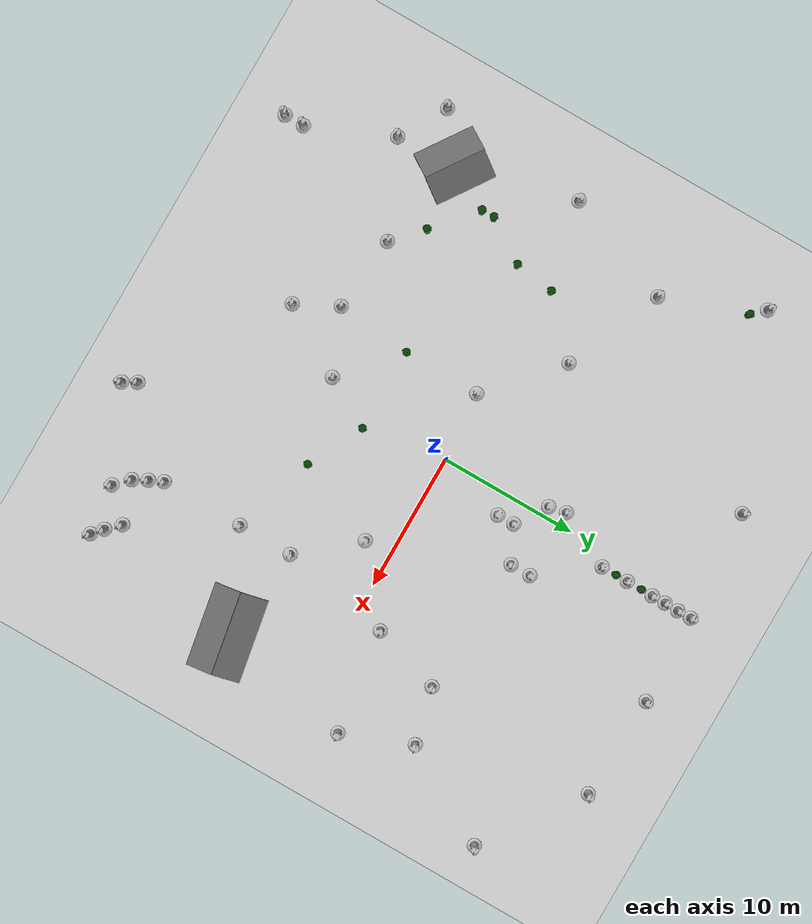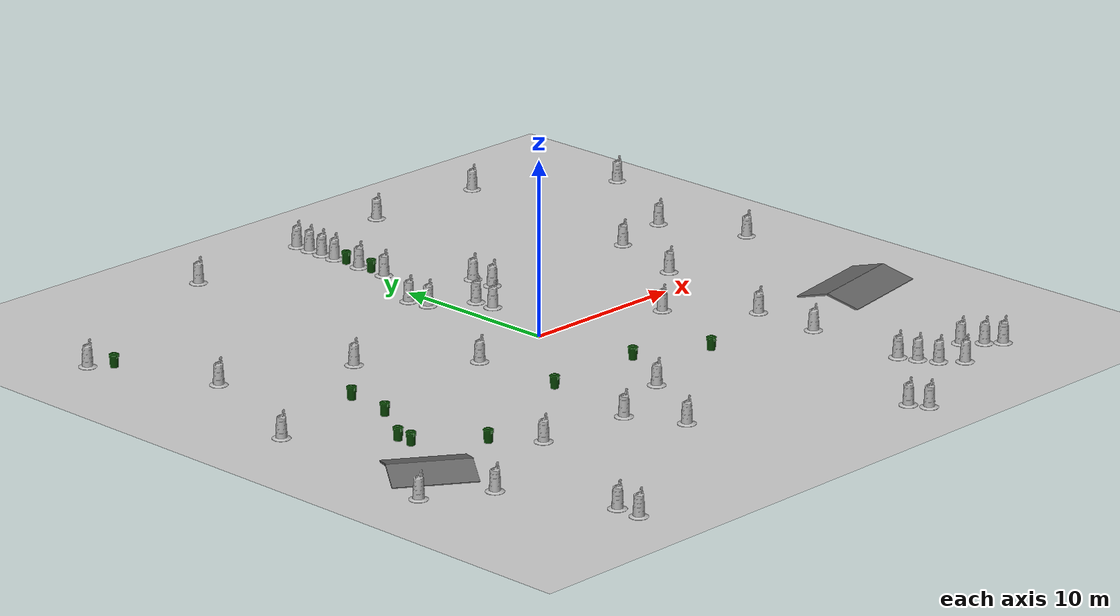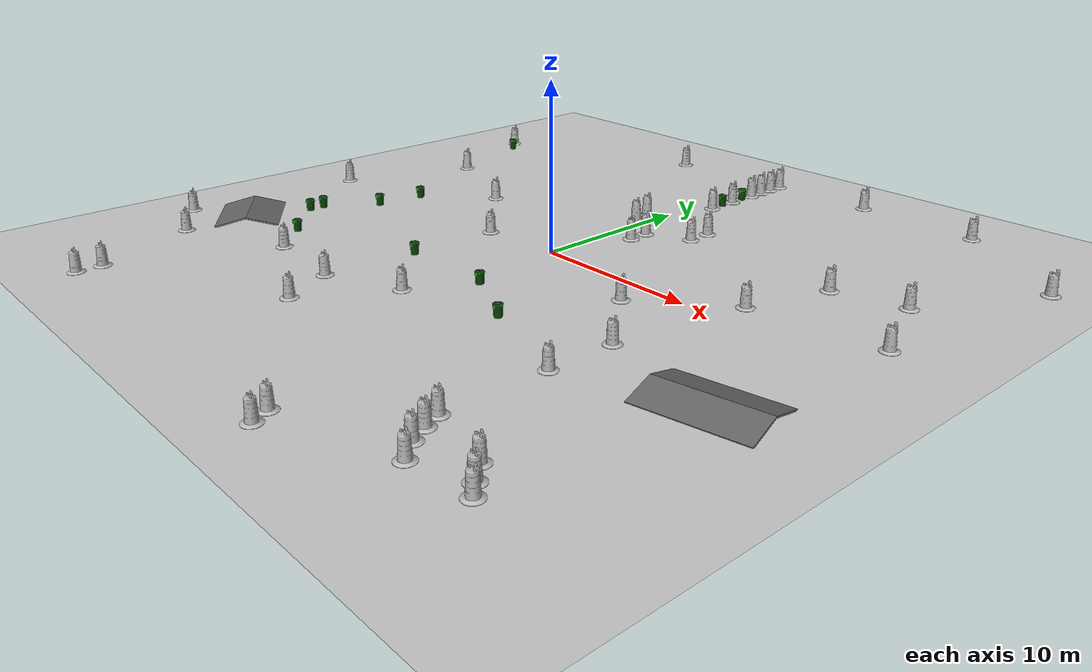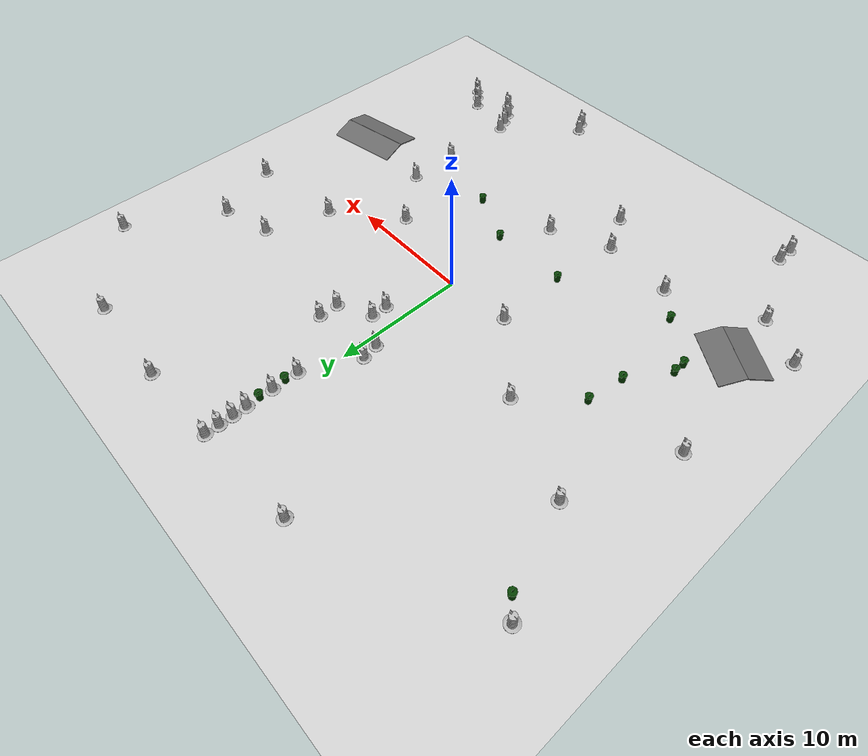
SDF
<sdf version="1.6">
 <world name="default">
  <model name="igvc_basic_ground">
   <static>1</static>
   <link name="link">
    <collision name="collision">
     <geometry><plane><normal>0 0 1</normal><size>50 50</size></plane></geometry>
     <surface><friction><ode><mu>100</mu><mu2>50</mu2></ode></friction></surface>
    </collision>
    <visual name="visual">
     <cast_shadows>0</cast_shadows>
     <geometry><plane><normal>0 0 1</normal><size>50 50</size></plane></geometry>
     <material>
      <script>
       <uri>model://igvc_basic_ground/materials/scripts</uri>
       <uri>model://igvc_basic_ground/materials/textures</uri>
       <name>igvc_basic_ground/Image</name>
      </script>
     </material>
    </visual>
    <velocity_decay><linear>0</linear><angular>0</angular></velocity_decay>
   </link>
  </model>
  <model name="ground_plane">
   <static>1</static>
   <link name="link">
    <visual name="visual">
     <geometry><plane><normal>0 0 1</normal><size>200 200</size></plane></geometry>
     <material>
      <script>
       <uri>model://igvc_basic_ground/materials/scripts</uri>
       <uri>model://igvc_basic_ground/materials/textures</uri>
       <name>igvc_basic_ground/grass</name>
      </script>
     </material>
    </visual>
   </link>
   <pose>0 0 -0.2 0 0 0</pose>
  </model>
  <light name="sun" type="directional">
   <pose>0 0 10 0 -0 0</pose>
   <diffuse>0.8 0.8 0.8 1</diffuse>
   <specular>0.2 0.2 0.2 1</specular>
   <attenuation>
    <range>1000</range>
    <constant>0.9</constant>
    <linear>0.01</linear>
    <quadratic>0.001</quadratic>
   </attenuation>
   <direction>-0.5 0.1 -0.9</direction>
  </light>
  <physics name="default_physics" default="0" type="ode">
   <max_step_size>0.001</max_step_size>
   <real_time_factor>1</real_time_factor>
   <real_time_update_rate>1000</real_time_update_rate>
  </physics>
  <scene><ambient>0.4 0.4 0.4 1</ambient><background>0.7 0.7 0.7 1</background><shadows>1</shadows></scene>
  <spherical_coordinates>
   <surface_model>EARTH_WGS84</surface_model>
   <latitude_deg>0</latitude_deg>
   <longitude_deg>0</longitude_deg>
   <elevation>0</elevation>
   <heading_deg>0</heading_deg>
  </spherical_coordinates>
  <model name="ramp1_up">
   <static>1</static>
   <pose>-18.4 -10.4 0.2 0.2612 -0 -0.6</pose>
   <link name="link">
    <collision name="collision"><geometry><box><size>4.5 2 0.1</size></box></geometry></collision>
    <visual name="visual">
     <geometry><box><size>4.5 2 0.1</size></box></geometry>
     <material>
      <ambient>0.8 1 0.8 1</ambient>
      <specular>0.2 0.2 0.2 64</specular>
      <diffuse>0.4 0.4 0.4 1</diffuse>
     </material>
    </visual>
   </link>
  </model>
  <model name="ramp1_down">
   <static>1</static>
   <pose>-17.3 -8.8414 0.2 0.2612 -0 2.5416</pose>
   <link name="link">
    <collision name="collision"><geometry><box><size>4.5 2 0.1</size></box></geometry></collision>
    <visual name="visual">
     <geometry><box><size>4.5 2 0.1</size></box></geometry>
     <material>
      <ambient>0.8 1 0.8 1</ambient>
      <specular>0.2 0.2 0.2 64</specular>
      <diffuse>0.4 0.4 0.4 1</diffuse>
     </material>
    </visual>
   </link>
  </model>
  <model name="ramp2_up">
   <static>1</static>
   <pose>17.6547 -6.1 0.2 0.2612 -0 -2.962</pose>
   <link name="link">
    <collision name="collision"><geometry><box><size>6 2 0.1</size></box></geometry></collision>
    <visual name="visual">
     <geometry><box><size>6 2 0.1</size></box></geometry>
     <material>
      <ambient>0.8 1 0.8 1</ambient>
      <specular>0.2 0.2 0.2 64</specular>
      <diffuse>0.4 0.4 0.4 1</diffuse>
     </material>
    </visual>
   </link>
  </model>
  <model name="ramp2_down">
   <static>1</static>
   <pose>18 -8 0.2 0.2612 -0 0.18</pose>
   <link name="link">
    <collision name="collision"><geometry><box><size>6 2 0.1</size></box></geometry></collision>
    <visual name="visual">
     <geometry><box><size>6 2 0.1</size></box></geometry>
     <material>
      <ambient>0.8 1 0.8 1</ambient>
      <specular>0.2 0.2 0.2 64</specular>
      <diffuse>0.4 0.4 0.4 1</diffuse>
     </material>
    </visual>
   </link>
  </model>
  <model name="Construction Barrel">
   <link name="link">
    <inertial>
     <pose>0 0 0.4 0 -0 0</pose>
     <mass>500</mass>
     <inertia><ixx>51.2096</ixx><iyy>51.2096</iyy><izz>25</izz><ixy>0</ixy><ixz>0</ixz><iyz>0</iyz></inertia>
    </inertial>
    <collision name="collision">
     <geometry><mesh><uri>model://construction_barrel/meshes/construction_barrel.dae</uri></mesh></geometry>
    </collision>
    <visual name="visual">
     <geometry><mesh><uri>model://construction_barrel/meshes/construction_barrel.dae</uri></mesh></geometry>
    </visual>
    <velocity_decay><linear>0</linear><angular>0</angular></velocity_decay>
   </link>
   <pose>-15.0002 -21.4499 -4e-06 -5e-06 -7e-06 -0.002918</pose>
   <static>0</static>
  </model>
  <model name="Construction Barrel_0">
   <link name="link">
    <inertial>
     <pose>0 0 0.4 0 -0 0</pose>
     <mass>500</mass>
     <inertia><ixx>51.2096</ixx><iyy>51.2096</iyy><izz>25</izz><ixy>0</ixy><ixz>0</ixz><iyz>0</iyz></inertia>
    </inertial>
    <collision name="collision">
     <geometry><mesh><uri>model://construction_barrel/meshes/construction_barrel.dae</uri></mesh></geometry>
    </collision>
    <visual name="visual">
     <geometry><mesh><uri>model://construction_barrel/meshes/construction_barrel.dae</uri></mesh></geometry>
    </visual>
    <velocity_decay><linear>0</linear><angular>0</angular></velocity_decay>
   </link>
   <pose>-15.0002 -19.9984 -4e-06 -5e-06 -7e-06 -0.002982</pose>
   <static>0</static>
  </model>
  <model name="Construction Barrel_1">
   <link name="link">
    <inertial>
     <pose>0 0 0.4 0 -0 0</pose>
     <mass>500</mass>
     <inertia><ixx>51.2096</ixx><iyy>51.2096</iyy><izz>25</izz><ixy>0</ixy><ixz>0</ixz><iyz>0</iyz></inertia>
    </inertial>
    <collision name="collision">
     <geometry><mesh><uri>model://construction_barrel/meshes/construction_barrel.dae</uri></mesh></geometry>
    </collision>
    <visual name="visual">
     <geometry><mesh><uri>model://construction_barrel/meshes/construction_barrel.dae</uri></mesh></geometry>
    </visual>
    <velocity_decay><linear>0</linear><angular>0</angular></velocity_decay>
   </link>
   <pose>-17.5785 -13.9984 -4e-06 -5e-06 -7e-06 -0.002983</pose>
   <static>0</static>
  </model>
  <model name="Construction Barrel_2">
   <link name="link">
    <inertial>
     <pose>0 0 0.4 0 -0 0</pose>
     <mass>500</mass>
     <inertia><ixx>51.2096</ixx><iyy>51.2096</iyy><izz>25</izz><ixy>0</ixy><ixz>0</ixz><iyz>0</iyz></inertia>
    </inertial>
    <collision name="collision">
     <geometry><mesh><uri>model://construction_barrel/meshes/construction_barrel.dae</uri></mesh></geometry>
    </collision>
    <visual name="visual">
     <geometry><mesh><uri>model://construction_barrel/meshes/construction_barrel.dae</uri></mesh></geometry>
    </visual>
    <velocity_decay><linear>0</linear><angular>0</angular></velocity_decay>
   </link>
   <pose>-20.9855 -12.0069 -4e-06 -5e-06 -7e-06 -0.002768</pose>
   <static>0</static>
  </model>
  <model name="first_2015_trash_can_1">
   <link name="link">
    <inertial>
     <pose>0 0 0.3683 0 -0 0</pose>
     <mass>4.83076</mass>
     <inertia>
      <ixx>0.281534</ixx>
      <ixy>0</ixy>
      <ixz>0</ixz>
      <iyy>0.281534</iyy>
      <iyz>0</iyz>
      <izz>0.126223</izz>
     </inertia>
    </inertial>
    <visual name="visual">
     <geometry><mesh><uri>model://first_2015_trash_can/meshes/trash_can.dae</uri></mesh></geometry>
    </visual>
    <collision name="collision">
     <geometry><mesh><uri>model://first_2015_trash_can/meshes/trash_can.dae</uri></mesh></geometry>
    </collision>
    <velocity_decay><linear>0</linear><angular>0</angular></velocity_decay>
   </link>
   <pose>-15.9987 -6.40843 -4e-06 3e-06 -2e-06 -0.006209</pose>
   <static>0</static>
  </model>
  <model name="first_2015_trash_can_2">
   <link name="link">
    <inertial>
     <pose>0 0 0.3683 0 -0 0</pose>
     <mass>4.83076</mass>
     <inertia>
      <ixx>0.281534</ixx>
      <ixy>0</ixy>
      <ixz>0</ixz>
      <iyy>0.281534</iyy>
      <iyz>0</iyz>
      <izz>0.126223</izz>
     </inertia>
    </inertial>
    <visual name="visual">
     <geometry><mesh><uri>model://first_2015_trash_can/meshes/trash_can.dae</uri></mesh></geometry>
    </visual>
    <collision name="collision">
     <geometry><mesh><uri>model://first_2015_trash_can/meshes/trash_can.dae</uri></mesh></geometry>
    </collision>
    <velocity_decay><linear>0</linear><angular>0</angular></velocity_decay>
   </link>
   <pose>-15.9988 -5.46446 -1e-06 1.9e-05 4e-06 -0.005434</pose>
   <static>0</static>
  </model>
  <model name="Construction Barrel_4">
   <link name="link">
    <inertial>
     <pose>0 0 0.4 0 -0 0</pose>
     <mass>500</mass>
     <inertia><ixx>51.2096</ixx><iyy>51.2096</iyy><izz>25</izz><ixy>0</ixy><ixz>0</ixz><iyz>0</iyz></inertia>
    </inertial>
    <collision name="collision">
     <geometry><mesh><uri>model://construction_barrel/meshes/construction_barrel.dae</uri></mesh></geometry>
    </collision>
    <visual name="visual">
     <geometry><mesh><uri>model://construction_barrel/meshes/construction_barrel.dae</uri></mesh></geometry>
    </visual>
    <velocity_decay><linear>0</linear><angular>0</angular></velocity_decay>
   </link>
   <pose>-20.0002 -0.998557 0 1e-06 1e-06 -0.0028</pose>
   <static>0</static>
  </model>
  <model name="Construction Barrel_5">
   <link name="link">
    <inertial>
     <pose>0 0 0.4 0 -0 0</pose>
     <mass>500</mass>
     <inertia><ixx>51.2096</ixx><iyy>51.2096</iyy><izz>25</izz><ixy>0</ixy><ixz>0</ixz><iyz>0</iyz></inertia>
    </inertial>
    <collision name="collision">
     <geometry><mesh><uri>model://construction_barrel/meshes/construction_barrel.dae</uri></mesh></geometry>
    </collision>
    <visual name="visual">
     <geometry><mesh><uri>model://construction_barrel/meshes/construction_barrel.dae</uri></mesh></geometry>
    </visual>
    <velocity_decay><linear>0</linear><angular>0</angular></velocity_decay>
   </link>
   <pose>-17.0002 7.0014 -4e-06 -5e-06 -7e-06 -0.002735</pose>
   <static>0</static>
  </model>
  <model name="Construction Barrel_6">
   <link name="link">
    <inertial>
     <pose>0 0 0.4 0 -0 0</pose>
     <mass>500</mass>
     <inertia><ixx>51.2096</ixx><iyy>51.2096</iyy><izz>25</izz><ixy>0</ixy><ixz>0</ixz><iyz>0</iyz></inertia>
    </inertial>
    <collision name="collision">
     <geometry><mesh><uri>model://construction_barrel/meshes/construction_barrel.dae</uri></mesh></geometry>
    </collision>
    <visual name="visual">
     <geometry><mesh><uri>model://construction_barrel/meshes/construction_barrel.dae</uri></mesh></geometry>
    </visual>
    <velocity_decay><linear>0</linear><angular>0</angular></velocity_decay>
   </link>
   <pose>-20.0002 14.0015 -4e-06 -5e-06 -7e-06 -0.002679</pose>
   <static>0</static>
  </model>
  <model name="first_2015_trash_can_3">
   <link name="link">
    <inertial>
     <pose>0 0 0.3683 0 -0 0</pose>
     <mass>4.83076</mass>
     <inertia>
      <ixx>0.281534</ixx>
      <ixy>0</ixy>
      <ixz>0</ixz>
      <iyy>0.281534</iyy>
      <iyz>0</iyz>
      <izz>0.126223</izz>
     </inertia>
    </inertial>
    <visual name="visual">
     <geometry><mesh><uri>model://first_2015_trash_can/meshes/trash_can.dae</uri></mesh></geometry>
    </visual>
    <collision name="collision">
     <geometry><mesh><uri>model://first_2015_trash_can/meshes/trash_can.dae</uri></mesh></geometry>
    </collision>
    <velocity_decay><linear>0</linear><angular>0</angular></velocity_decay>
   </link>
   <pose>-18.999 12.9997 -2e-06 4e-06 1.3e-05 -0.005982</pose>
   <static>0</static>
  </model>
  <model name="Construction Barrel_7">
   <link name="link">
    <inertial>
     <pose>0 0 0.4 0 -0 0</pose>
     <mass>500</mass>
     <inertia><ixx>51.2096</ixx><iyy>51.2096</iyy><izz>25</izz><ixy>0</ixy><ixz>0</ixz><iyz>0</iyz></inertia>
    </inertial>
    <collision name="collision">
     <geometry><mesh><uri>model://construction_barrel/meshes/construction_barrel.dae</uri></mesh></geometry>
    </collision>
    <visual name="visual">
     <geometry><mesh><uri>model://construction_barrel/meshes/construction_barrel.dae</uri></mesh></geometry>
    </visual>
    <velocity_decay><linear>0</linear><angular>0</angular></velocity_decay>
   </link>
   <pose>-7.00003 19.5 0 1e-06 1e-06 -0.002542</pose>
   <static>0</static>
  </model>
  <model name="Construction Barrel_8">
   <link name="link">
    <inertial>
     <pose>0 0 0.4 0 -0 0</pose>
     <mass>500</mass>
     <inertia><ixx>51.2096</ixx><iyy>51.2096</iyy><izz>25</izz><ixy>0</ixy><ixz>0</ixz><iyz>0</iyz></inertia>
    </inertial>
    <collision name="collision">
     <geometry><mesh><uri>model://construction_barrel/meshes/construction_barrel.dae</uri></mesh></geometry>
    </collision>
    <visual name="visual">
     <geometry><mesh><uri>model://construction_barrel/meshes/construction_barrel.dae</uri></mesh></geometry>
    </visual>
    <velocity_decay><linear>0</linear><angular>0</angular></velocity_decay>
   </link>
   <pose>1.0061 20.0321 -2e-06 -5e-06 -4e-06 0.001778</pose>
   <static>0</static>
  </model>
  <model name="Construction Barrel_9">
   <link name="link">
    <inertial>
     <pose>0 0 0.4 0 -0 0</pose>
     <mass>500</mass>
     <inertia><ixx>51.2096</ixx><iyy>51.2096</iyy><izz>25</izz><ixy>0</ixy><ixz>0</ixz><iyz>0</iyz></inertia>
    </inertial>
    <collision name="collision">
     <geometry><mesh><uri>model://construction_barrel/meshes/construction_barrel.dae</uri></mesh></geometry>
    </collision>
    <visual name="visual">
     <geometry><mesh><uri>model://construction_barrel/meshes/construction_barrel.dae</uri></mesh></geometry>
    </visual>
    <velocity_decay><linear>0</linear><angular>0</angular></velocity_decay>
   </link>
   <pose>1.00725 19.0136 -3e-06 -5e-06 -4e-06 -0.041479</pose>
   <static>0</static>
  </model>
  <model name="Construction Barrel_10">
   <link name="link">
    <inertial>
     <pose>0 0 0.4 0 -0 0</pose>
     <mass>500</mass>
     <inertia><ixx>51.2096</ixx><iyy>51.2096</iyy><izz>25</izz><ixy>0</ixy><ixz>0</ixz><iyz>0</iyz></inertia>
    </inertial>
    <collision name="collision">
     <geometry><mesh><uri>model://construction_barrel/meshes/construction_barrel.dae</uri></mesh></geometry>
    </collision>
    <visual name="visual">
     <geometry><mesh><uri>model://construction_barrel/meshes/construction_barrel.dae</uri></mesh></geometry>
    </visual>
    <velocity_decay><linear>0</linear><angular>0</angular></velocity_decay>
   </link>
   <pose>0.994832 17.9958 -0 1e-06 -1e-06 0.05713</pose>
   <static>0</static>
  </model>
  <model name="Construction Barrel_11">
   <link name="link">
    <inertial>
     <pose>0 0 0.4 0 -0 0</pose>
     <mass>500</mass>
     <inertia><ixx>51.2096</ixx><iyy>51.2096</iyy><izz>25</izz><ixy>0</ixy><ixz>0</ixz><iyz>0</iyz></inertia>
    </inertial>
    <collision name="collision">
     <geometry><mesh><uri>model://construction_barrel/meshes/construction_barrel.dae</uri></mesh></geometry>
    </collision>
    <visual name="visual">
     <geometry><mesh><uri>model://construction_barrel/meshes/construction_barrel.dae</uri></mesh></geometry>
    </visual>
    <velocity_decay><linear>0</linear><angular>0</angular></velocity_decay>
   </link>
   <pose>1.00137 16.98 -1e-06 0 5e-06 0.03848</pose>
   <static>0</static>
  </model>
  <model name="first_2015_trash_can_4">
   <link name="link">
    <inertial>
     <pose>0 0 0.3683 0 -0 0</pose>
     <mass>4.83076</mass>
     <inertia>
      <ixx>0.281534</ixx>
      <ixy>0</ixy>
      <ixz>0</ixz>
      <iyy>0.281534</iyy>
      <iyz>0</iyz>
      <izz>0.126223</izz>
     </inertia>
    </inertial>
    <visual name="visual">
     <geometry><mesh><uri>model://first_2015_trash_can/meshes/trash_can.dae</uri></mesh></geometry>
    </visual>
    <collision name="collision">
     <geometry><mesh><uri>model://first_2015_trash_can/meshes/trash_can.dae</uri></mesh></geometry>
    </collision>
    <velocity_decay><linear>0</linear><angular>0</angular></velocity_decay>
   </link>
   <pose>1.00108 15.9997 -1e-06 -2e-05 -2e-06 -0.005542</pose>
   <static>0</static>
  </model>
  <model name="Construction Barrel_12">
   <link name="link">
    <inertial>
     <pose>0 0 0.4 0 -0 0</pose>
     <mass>500</mass>
     <inertia><ixx>51.2096</ixx><iyy>51.2096</iyy><izz>25</izz><ixy>0</ixy><ixz>0</ixz><iyz>0</iyz></inertia>
    </inertial>
    <collision name="collision">
     <geometry><mesh><uri>model://construction_barrel/meshes/construction_barrel.dae</uri></mesh></geometry>
    </collision>
    <visual name="visual">
     <geometry><mesh><uri>model://construction_barrel/meshes/construction_barrel.dae</uri></mesh></geometry>
    </visual>
    <velocity_decay><linear>0</linear><angular>0</angular></velocity_decay>
   </link>
   <pose>0.999793 15.0012 -4e-06 -5e-06 -7e-06 -0.002189</pose>
   <static>0</static>
  </model>
  <model name="Construction Barrel_13">
   <link name="link">
    <inertial>
     <pose>0 0 0.4 0 -0 0</pose>
     <mass>500</mass>
     <inertia><ixx>51.2096</ixx><iyy>51.2096</iyy><izz>25</izz><ixy>0</ixy><ixz>0</ixz><iyz>0</iyz></inertia>
    </inertial>
    <collision name="collision">
     <geometry><mesh><uri>model://construction_barrel/meshes/construction_barrel.dae</uri></mesh></geometry>
    </collision>
    <visual name="visual">
     <geometry><mesh><uri>model://construction_barrel/meshes/construction_barrel.dae</uri></mesh></geometry>
    </visual>
    <velocity_decay><linear>0</linear><angular>0</angular></velocity_decay>
   </link>
   <pose>0.999797 13.0011 -4e-06 -5e-06 -7e-06 -0.002115</pose>
   <static>0</static>
  </model>
  <model name="first_2015_trash_can_5">
   <link name="link">
    <inertial>
     <pose>0 0 0.3683 0 -0 0</pose>
     <mass>4.83076</mass>
     <inertia>
      <ixx>0.281534</ixx>
      <ixy>0</ixy>
      <ixz>0</ixz>
      <iyy>0.281534</iyy>
      <iyz>0</iyz>
      <izz>0.126223</izz>
     </inertia>
    </inertial>
    <visual name="visual">
     <geometry><mesh><uri>model://first_2015_trash_can/meshes/trash_can.dae</uri></mesh></geometry>
    </visual>
    <collision name="collision">
     <geometry><mesh><uri>model://first_2015_trash_can/meshes/trash_can.dae</uri></mesh></geometry>
    </collision>
    <velocity_decay><linear>0</linear><angular>0</angular></velocity_decay>
   </link>
   <pose>1.00104 13.9999 -1e-06 1.7e-05 2e-06 -0.004507</pose>
   <static>0</static>
  </model>
  <model name="Construction Barrel_14">
   <link name="link">
    <inertial>
     <pose>0 0 0.4 0 -0 0</pose>
     <mass>500</mass>
     <inertia><ixx>51.2096</ixx><iyy>51.2096</iyy><izz>25</izz><ixy>0</ixy><ixz>0</ixz><iyz>0</iyz></inertia>
    </inertial>
    <collision name="collision">
     <geometry><mesh><uri>model://construction_barrel/meshes/construction_barrel.dae</uri></mesh></geometry>
    </collision>
    <visual name="visual">
     <geometry><mesh><uri>model://construction_barrel/meshes/construction_barrel.dae</uri></mesh></geometry>
    </visual>
    <velocity_decay><linear>0</linear><angular>0</angular></velocity_decay>
   </link>
   <pose>1.48637 6.26313 -0 -1e-06 -0 -0.047595</pose>
   <static>0</static>
  </model>
  <model name="Construction Barrel_15">
   <link name="link">
    <inertial>
     <pose>0 0 0.4 0 -0 0</pose>
     <mass>500</mass>
     <inertia><ixx>51.2096</ixx><iyy>51.2096</iyy><izz>25</izz><ixy>0</ixy><ixz>0</ixz><iyz>0</iyz></inertia>
    </inertial>
    <collision name="collision">
     <geometry><mesh><uri>model://construction_barrel/meshes/construction_barrel.dae</uri></mesh></geometry>
    </collision>
    <visual name="visual">
     <geometry><mesh><uri>model://construction_barrel/meshes/construction_barrel.dae</uri></mesh></geometry>
    </visual>
    <velocity_decay><linear>0</linear><angular>0</angular></velocity_decay>
   </link>
   <pose>-1.00011 8.99997 1e-06 3e-06 2e-06 -3e-05</pose>
   <static>0</static>
  </model>
  <model name="Construction Barrel_16">
   <link name="link">
    <inertial>
     <pose>0 0 0.4 0 -0 0</pose>
     <mass>500</mass>
     <inertia><ixx>51.2096</ixx><iyy>51.2096</iyy><izz>25</izz><ixy>0</ixy><ixz>0</ixz><iyz>0</iyz></inertia>
    </inertial>
    <collision name="collision">
     <geometry><mesh><uri>model://construction_barrel/meshes/construction_barrel.dae</uri></mesh></geometry>
    </collision>
    <visual name="visual">
     <geometry><mesh><uri>model://construction_barrel/meshes/construction_barrel.dae</uri></mesh></geometry>
    </visual>
    <velocity_decay><linear>0</linear><angular>0</angular></velocity_decay>
   </link>
   <pose>-10.0001 4.00091 -4e-06 -5e-06 -7e-06 -0.001843</pose>
   <static>0</static>
  </model>
  <model name="Construction Barrel_17">
   <link name="link">
    <inertial>
     <pose>0 0 0.4 0 -0 0</pose>
     <mass>500</mass>
     <inertia><ixx>51.2096</ixx><iyy>51.2096</iyy><izz>25</izz><ixy>0</ixy><ixz>0</ixz><iyz>0</iyz></inertia>
    </inertial>
    <collision name="collision">
     <geometry><mesh><uri>model://construction_barrel/meshes/construction_barrel.dae</uri></mesh></geometry>
    </collision>
    <visual name="visual">
     <geometry><mesh><uri>model://construction_barrel/meshes/construction_barrel.dae</uri></mesh></geometry>
    </visual>
    <velocity_decay><linear>0</linear><angular>0</angular></velocity_decay>
   </link>
   <pose>4.00044 9.00687 -0 1e-06 -1e-06 -0.000916</pose>
   <static>0</static>
  </model>
  <model name="Construction Barrel_18">
   <link name="link">
    <inertial>
     <pose>0 0 0.4 0 -0 0</pose>
     <mass>500</mass>
     <inertia><ixx>51.2096</ixx><iyy>51.2096</iyy><izz>25</izz><ixy>0</ixy><ixz>0</ixz><iyz>0</iyz></inertia>
    </inertial>
    <collision name="collision">
     <geometry><mesh><uri>model://construction_barrel/meshes/construction_barrel.dae</uri></mesh></geometry>
    </collision>
    <visual name="visual">
     <geometry><mesh><uri>model://construction_barrel/meshes/construction_barrel.dae</uri></mesh></geometry>
    </visual>
    <velocity_decay><linear>0</linear><angular>0</angular></velocity_decay>
   </link>
   <pose>-11.0001 -10.9991 -4e-06 -5e-06 -7e-06 -0.001749</pose>
   <static>0</static>
  </model>
  <model name="first_2015_trash_can_6">
   <link name="link">
    <inertial>
     <pose>0 0 0.3683 0 -0 0</pose>
     <mass>4.83076</mass>
     <inertia>
      <ixx>0.281534</ixx>
      <ixy>0</ixy>
      <ixz>0</ixz>
      <iyy>0.281534</iyy>
      <iyz>0</iyz>
      <izz>0.126223</izz>
     </inertia>
    </inertial>
    <visual name="visual">
     <geometry><mesh><uri>model://first_2015_trash_can/meshes/trash_can.dae</uri></mesh></geometry>
    </visual>
    <collision name="collision">
     <geometry><mesh><uri>model://first_2015_trash_can/meshes/trash_can.dae</uri></mesh></geometry>
    </collision>
    <velocity_decay><linear>0</linear><angular>0</angular></velocity_decay>
   </link>
   <pose>-12.999 -9.00022 -4e-06 -1e-06 1.9e-05 -0.005092</pose>
   <static>0</static>
  </model>
  <model name="first_2015_trash_can_7">
   <link name="link">
    <inertial>
     <pose>0 0 0.3683 0 -0 0</pose>
     <mass>4.83076</mass>
     <inertia>
      <ixx>0.281534</ixx>
      <ixy>0</ixy>
      <ixz>0</ixz>
      <iyy>0.281534</iyy>
      <iyz>0</iyz>
      <izz>0.126223</izz>
     </inertia>
    </inertial>
    <visual name="visual">
     <geometry><mesh><uri>model://first_2015_trash_can/meshes/trash_can.dae</uri></mesh></geometry>
    </visual>
    <collision name="collision">
     <geometry><mesh><uri>model://first_2015_trash_can/meshes/trash_can.dae</uri></mesh></geometry>
    </collision>
    <velocity_decay><linear>0</linear><angular>0</angular></velocity_decay>
   </link>
   <pose>-13.999 -2.44883 -5e-06 5e-06 2e-05 -0.005077</pose>
   <static>0</static>
  </model>
  <model name="first_2015_trash_can_8">
   <link name="link">
    <inertial>
     <pose>0 0 0.3683 0 -0 0</pose>
     <mass>4.83076</mass>
     <inertia>
      <ixx>0.281534</ixx>
      <ixy>0</ixy>
      <ixz>0</ixz>
      <iyy>0.281534</iyy>
      <iyz>0</iyz>
      <izz>0.126223</izz>
     </inertia>
    </inertial>
    <visual name="visual">
     <geometry><mesh><uri>model://first_2015_trash_can/meshes/trash_can.dae</uri></mesh></geometry>
    </visual>
    <collision name="collision">
     <geometry><mesh><uri>model://first_2015_trash_can/meshes/trash_can.dae</uri></mesh></geometry>
    </collision>
    <velocity_decay><linear>0</linear><angular>0</angular></velocity_decay>
   </link>
   <pose>-13.5824 0.46204 -2e-06 1e-06 1e-05 -0.004711</pose>
   <static>0</static>
  </model>
  <model name="first_2015_trash_can_9">
   <link name="link">
    <inertial>
     <pose>0 0 0.3683 0 -0 0</pose>
     <mass>4.83076</mass>
     <inertia>
      <ixx>0.281534</ixx>
      <ixy>0</ixy>
      <ixz>0</ixz>
      <iyy>0.281534</iyy>
      <iyz>0</iyz>
      <izz>0.126223</izz>
     </inertia>
    </inertial>
    <visual name="visual">
     <geometry><mesh><uri>model://first_2015_trash_can/meshes/trash_can.dae</uri></mesh></geometry>
    </visual>
    <collision name="collision">
     <geometry><mesh><uri>model://first_2015_trash_can/meshes/trash_can.dae</uri></mesh></geometry>
    </collision>
    <velocity_decay><linear>0</linear><angular>0</angular></velocity_decay>
   </link>
   <pose>-4.99902 -6.00023 -5e-06 -1e-06 2e-06 -0.00457</pose>
   <static>0</static>
  </model>
  <model name="Construction Barrel_19">
   <link name="link">
    <inertial>
     <pose>0 0 0.4 0 -0 0</pose>
     <mass>500</mass>
     <inertia><ixx>51.2096</ixx><iyy>51.2096</iyy><izz>25</izz><ixy>0</ixy><ixz>0</ixz><iyz>0</iyz></inertia>
    </inertial>
    <collision name="collision">
     <geometry><mesh><uri>model://construction_barrel/meshes/construction_barrel.dae</uri></mesh></geometry>
    </collision>
    <visual name="visual">
     <geometry><mesh><uri>model://construction_barrel/meshes/construction_barrel.dae</uri></mesh></geometry>
    </visual>
    <velocity_decay><linear>0</linear><angular>0</angular></velocity_decay>
   </link>
   <pose>-0.750119 7.75 -2e-06 7e-06 -2e-06 -2.8e-05</pose>
   <static>0</static>
  </model>
  <model name="Construction Barrel_20">
   <link name="link">
    <inertial>
     <pose>0 0 0.4 0 -0 0</pose>
     <mass>500</mass>
     <inertia><ixx>51.2096</ixx><iyy>51.2096</iyy><izz>25</izz><ixy>0</ixy><ixz>0</ixz><iyz>0</iyz></inertia>
    </inertial>
    <collision name="collision">
     <geometry><mesh><uri>model://construction_barrel/meshes/construction_barrel.dae</uri></mesh></geometry>
    </collision>
    <visual name="visual">
     <geometry><mesh><uri>model://construction_barrel/meshes/construction_barrel.dae</uri></mesh></geometry>
    </visual>
    <velocity_decay><linear>0</linear><angular>0</angular></velocity_decay>
   </link>
   <pose>4.00142 7.5 -1e-06 0 5e-06 0.000531</pose>
   <static>0</static>
  </model>
  <model name="Construction Barrel_21">
   <link name="link">
    <inertial>
     <pose>0 0 0.4 0 -0 0</pose>
     <mass>500</mass>
     <inertia><ixx>51.2096</ixx><iyy>51.2096</iyy><izz>25</izz><ixy>0</ixy><ixz>0</ixz><iyz>0</iyz></inertia>
    </inertial>
    <collision name="collision">
     <geometry><mesh><uri>model://construction_barrel/meshes/construction_barrel.dae</uri></mesh></geometry>
    </collision>
    <visual name="visual">
     <geometry><mesh><uri>model://construction_barrel/meshes/construction_barrel.dae</uri></mesh></geometry>
    </visual>
    <velocity_decay><linear>0</linear><angular>0</angular></velocity_decay>
   </link>
   <pose>7.49997 20.25 -0 0 0 -0.001333</pose>
   <static>0</static>
  </model>
  <model name="Construction Barrel_22">
   <link name="link">
    <inertial>
     <pose>0 0 0.4 0 -0 0</pose>
     <mass>500</mass>
     <inertia><ixx>51.2096</ixx><iyy>51.2096</iyy><izz>25</izz><ixy>0</ixy><ixz>0</ixz><iyz>0</iyz></inertia>
    </inertial>
    <collision name="collision">
     <geometry><mesh><uri>model://construction_barrel/meshes/construction_barrel.dae</uri></mesh></geometry>
    </collision>
    <visual name="visual">
     <geometry><mesh><uri>model://construction_barrel/meshes/construction_barrel.dae</uri></mesh></geometry>
    </visual>
    <velocity_decay><linear>0</linear><angular>0</angular></velocity_decay>
   </link>
   <pose>7.59322 -1.99941 -2e-06 -5e-06 -4e-06 -0.001278</pose>
   <static>0</static>
  </model>
  <model name="first_2015_trash_can_10">
   <link name="link">
    <inertial>
     <pose>0 0 0.3683 0 -0 0</pose>
     <mass>4.83076</mass>
     <inertia>
      <ixx>0.281534</ixx>
      <ixy>0</ixy>
      <ixz>0</ixz>
      <iyy>0.281534</iyy>
      <iyz>0</iyz>
      <izz>0.126223</izz>
     </inertia>
    </inertial>
    <visual name="visual">
     <geometry><mesh><uri>model://first_2015_trash_can/meshes/trash_can.dae</uri></mesh></geometry>
    </visual>
    <collision name="collision">
     <geometry><mesh><uri>model://first_2015_trash_can/meshes/trash_can.dae</uri></mesh></geometry>
    </collision>
    <velocity_decay><linear>0</linear><angular>0</angular></velocity_decay>
   </link>
   <pose>5.00089 -8.00024 -7e-06 2.8e-05 2e-06 -0.004045</pose>
   <static>0</static>
  </model>
  <model name="first_2015_trash_can_11">
   <link name="link">
    <inertial>
     <pose>0 0 0.3683 0 -0 0</pose>
     <mass>4.83076</mass>
     <inertia>
      <ixx>0.281534</ixx>
      <ixy>0</ixy>
      <ixz>0</ixz>
      <iyy>0.281534</iyy>
      <iyz>0</iyz>
      <izz>0.126223</izz>
     </inertia>
    </inertial>
    <visual name="visual">
     <geometry><mesh><uri>model://first_2015_trash_can/meshes/trash_can.dae</uri></mesh></geometry>
    </visual>
    <collision name="collision">
     <geometry><mesh><uri>model://first_2015_trash_can/meshes/trash_can.dae</uri></mesh></geometry>
    </collision>
    <velocity_decay><linear>0</linear><angular>0</angular></velocity_decay>
   </link>
   <pose>1.00087 -6.00016 2e-06 3.2e-05 8e-06 -0.003945</pose>
   <static>0</static>
  </model>
  <model name="Construction Barrel_23">
   <link name="link">
    <inertial>
     <pose>0 0 0.4 0 -0 0</pose>
     <mass>500</mass>
     <inertia><ixx>51.2096</ixx><iyy>51.2096</iyy><izz>25</izz><ixy>0</ixy><ixz>0</ixz><iyz>0</iyz></inertia>
    </inertial>
    <collision name="collision">
     <geometry><mesh><uri>model://construction_barrel/meshes/construction_barrel.dae</uri></mesh></geometry>
    </collision>
    <visual name="visual">
     <geometry><mesh><uri>model://construction_barrel/meshes/construction_barrel.dae</uri></mesh></geometry>
    </visual>
    <velocity_decay><linear>0</linear><angular>0</angular></velocity_decay>
   </link>
   <pose>-1.00013 -9.59778 -2e-06 -5e-06 -4e-06 -0.001123</pose>
   <static>0</static>
  </model>
  <model name="Construction Barrel_24">
   <link name="link">
    <inertial>
     <pose>0 0 0.4 0 -0 0</pose>
     <mass>500</mass>
     <inertia><ixx>51.2096</ixx><iyy>51.2096</iyy><izz>25</izz><ixy>0</ixy><ixz>0</ixz><iyz>0</iyz></inertia>
    </inertial>
    <collision name="collision">
     <geometry><mesh><uri>model://construction_barrel/meshes/construction_barrel.dae</uri></mesh></geometry>
    </collision>
    <visual name="visual">
     <geometry><mesh><uri>model://construction_barrel/meshes/construction_barrel.dae</uri></mesh></geometry>
    </visual>
    <velocity_decay><linear>0</linear><angular>0</angular></velocity_decay>
   </link>
   <pose>-4.00013 -14.5254 -2e-06 -5e-06 -4e-06 -0.001053</pose>
   <static>0</static>
  </model>
  <model name="Construction Barrel_25">
   <link name="link">
    <inertial>
     <pose>0 0 0.4 0 -0 0</pose>
     <mass>500</mass>
     <inertia><ixx>51.2096</ixx><iyy>51.2096</iyy><izz>25</izz><ixy>0</ixy><ixz>0</ixz><iyz>0</iyz></inertia>
    </inertial>
    <collision name="collision">
     <geometry><mesh><uri>model://construction_barrel/meshes/construction_barrel.dae</uri></mesh></geometry>
    </collision>
    <visual name="visual">
     <geometry><mesh><uri>model://construction_barrel/meshes/construction_barrel.dae</uri></mesh></geometry>
    </visual>
    <velocity_decay><linear>0</linear><angular>0</angular></velocity_decay>
   </link>
   <pose>-5.54651 -11.5209 -2e-06 -5e-06 -4e-06 -0.001035</pose>
   <static>0</static>
  </model>
  <model name="Construction Barrel_26">
   <link name="link">
    <inertial>
     <pose>0 0 0.4 0 -0 0</pose>
     <mass>500</mass>
     <inertia><ixx>51.2096</ixx><iyy>51.2096</iyy><izz>25</izz><ixy>0</ixy><ixz>0</ixz><iyz>0</iyz></inertia>
    </inertial>
    <collision name="collision">
     <geometry><mesh><uri>model://construction_barrel/meshes/construction_barrel.dae</uri></mesh></geometry>
    </collision>
    <visual name="visual">
     <geometry><mesh><uri>model://construction_barrel/meshes/construction_barrel.dae</uri></mesh></geometry>
    </visual>
    <velocity_decay><linear>0</linear><angular>0</angular></velocity_decay>
   </link>
   <pose>10.9999 -5.99956 -2e-06 -5e-06 -4e-06 -0.001008</pose>
   <static>0</static>
  </model>
  <model name="Construction Barrel_27">
   <link name="link">
    <inertial>
     <pose>0 0 0.4 0 -0 0</pose>
     <mass>500</mass>
     <inertia><ixx>51.2096</ixx><iyy>51.2096</iyy><izz>25</izz><ixy>0</ixy><ixz>0</ixz><iyz>0</iyz></inertia>
    </inertial>
    <collision name="collision">
     <geometry><mesh><uri>model://construction_barrel/meshes/construction_barrel.dae</uri></mesh></geometry>
    </collision>
    <visual name="visual">
     <geometry><mesh><uri>model://construction_barrel/meshes/construction_barrel.dae</uri></mesh></geometry>
    </visual>
    <velocity_decay><linear>0</linear><angular>0</angular></velocity_decay>
   </link>
   <pose>10.9999 -9.99965 -1e-06 3e-06 -0 -0.000859</pose>
   <static>0</static>
  </model>
  <model name="Construction Barrel_28">
   <link name="link">
    <inertial>
     <pose>0 0 0.4 0 -0 0</pose>
     <mass>500</mass>
     <inertia><ixx>51.2096</ixx><iyy>51.2096</iyy><izz>25</izz><ixy>0</ixy><ixz>0</ixz><iyz>0</iyz></inertia>
    </inertial>
    <collision name="collision">
     <geometry><mesh><uri>model://construction_barrel/meshes/construction_barrel.dae</uri></mesh></geometry>
    </collision>
    <visual name="visual">
     <geometry><mesh><uri>model://construction_barrel/meshes/construction_barrel.dae</uri></mesh></geometry>
    </visual>
    <velocity_decay><linear>0</linear><angular>0</angular></velocity_decay>
   </link>
   <pose>13.9999 7.00034 -1e-06 3e-06 -0 -0.000838</pose>
   <static>0</static>
  </model>
  <model name="Construction Barrel_29">
   <link name="link">
    <inertial>
     <pose>0 0 0.4 0 -0 0</pose>
     <mass>500</mass>
     <inertia><ixx>51.2096</ixx><iyy>51.2096</iyy><izz>25</izz><ixy>0</ixy><ixz>0</ixz><iyz>0</iyz></inertia>
    </inertial>
    <collision name="collision">
     <geometry><mesh><uri>model://construction_barrel/meshes/construction_barrel.dae</uri></mesh></geometry>
    </collision>
    <visual name="visual">
     <geometry><mesh><uri>model://construction_barrel/meshes/construction_barrel.dae</uri></mesh></geometry>
    </visual>
    <velocity_decay><linear>0</linear><angular>0</angular></velocity_decay>
   </link>
   <pose>12.4527 2.00032 -0 0 0 -0.000817</pose>
   <static>0</static>
  </model>
  <model name="Construction Barrel_30">
   <link name="link">
    <inertial>
     <pose>0 0 0.4 0 -0 0</pose>
     <mass>500</mass>
     <inertia><ixx>51.2096</ixx><iyy>51.2096</iyy><izz>25</izz><ixy>0</ixy><ixz>0</ixz><iyz>0</iyz></inertia>
    </inertial>
    <collision name="collision">
     <geometry><mesh><uri>model://construction_barrel/meshes/construction_barrel.dae</uri></mesh></geometry>
    </collision>
    <visual name="visual">
     <geometry><mesh><uri>model://construction_barrel/meshes/construction_barrel.dae</uri></mesh></geometry>
    </visual>
    <velocity_decay><linear>0</linear><angular>0</angular></velocity_decay>
   </link>
   <pose>1.50934 4.99999 -0 0 0 -0.001902</pose>
   <static>0</static>
  </model>
  <model name="Construction Barrel_31">
   <link name="link">
    <inertial>
     <pose>0 0 0.4 0 -0 0</pose>
     <mass>500</mass>
     <inertia><ixx>51.2096</ixx><iyy>51.2096</iyy><izz>25</izz><ixy>0</ixy><ixz>0</ixz><iyz>0</iyz></inertia>
    </inertial>
    <collision name="collision">
     <geometry><mesh><uri>model://construction_barrel/meshes/construction_barrel.dae</uri></mesh></geometry>
    </collision>
    <visual name="visual">
     <geometry><mesh><uri>model://construction_barrel/meshes/construction_barrel.dae</uri></mesh></geometry>
    </visual>
    <velocity_decay><linear>0</linear><angular>0</angular></velocity_decay>
   </link>
   <pose>-5.00016 -0.439846 0 0 0 -0.000748</pose>
   <static>0</static>
  </model>
  <model name="Construction Barrel_32">
   <link name="link">
    <inertial>
     <pose>0 0 0.4 0 -0 0</pose>
     <mass>500</mass>
     <inertia><ixx>51.2096</ixx><iyy>51.2096</iyy><izz>25</izz><ixy>0</ixy><ixz>0</ixz><iyz>0</iyz></inertia>
    </inertial>
    <collision name="collision">
     <geometry><mesh><uri>model://construction_barrel/meshes/construction_barrel.dae</uri></mesh></geometry>
    </collision>
    <visual name="visual">
     <geometry><mesh><uri>model://construction_barrel/meshes/construction_barrel.dae</uri></mesh></geometry>
    </visual>
    <velocity_decay><linear>0</linear><angular>0</angular></velocity_decay>
   </link>
   <pose>14.9998 20.0002 -4e-06 -5e-06 -7e-06 -0.000719</pose>
   <static>0</static>
  </model>
  <model name="Construction Barrel_33">
   <link name="link">
    <inertial>
     <pose>0 0 0.4 0 -0 0</pose>
     <mass>500</mass>
     <inertia><ixx>51.2096</ixx><iyy>51.2096</iyy><izz>25</izz><ixy>0</ixy><ixz>0</ixz><iyz>0</iyz></inertia>
    </inertial>
    <collision name="collision">
     <geometry><mesh><uri>model://construction_barrel/meshes/construction_barrel.dae</uri></mesh></geometry>
    </collision>
    <visual name="visual">
     <geometry><mesh><uri>model://construction_barrel/meshes/construction_barrel.dae</uri></mesh></geometry>
    </visual>
    <velocity_decay><linear>0</linear><angular>0</angular></velocity_decay>
   </link>
   <pose>21.9999 15.0002 -4e-06 -5e-06 -7e-06 -0.000654</pose>
   <static>0</static>
  </model>
  <model name="Construction Barrel_34">
   <link name="link">
    <inertial>
     <pose>0 0 0.4 0 -0 0</pose>
     <mass>500</mass>
     <inertia><ixx>51.2096</ixx><iyy>51.2096</iyy><izz>25</izz><ixy>0</ixy><ixz>0</ixz><iyz>0</iyz></inertia>
    </inertial>
    <collision name="collision">
     <geometry><mesh><uri>model://construction_barrel/meshes/construction_barrel.dae</uri></mesh></geometry>
    </collision>
    <visual name="visual">
     <geometry><mesh><uri>model://construction_barrel/meshes/construction_barrel.dae</uri></mesh></geometry>
    </visual>
    <velocity_decay><linear>0</linear><angular>0</angular></velocity_decay>
   </link>
   <pose>19.9998 3.0002 -4e-06 -5e-06 -7e-06 -0.000625</pose>
   <static>0</static>
  </model>
  <model name="Construction Barrel_35">
   <link name="link">
    <inertial>
     <pose>0 0 0.4 0 -0 0</pose>
     <mass>500</mass>
     <inertia><ixx>51.2096</ixx><iyy>51.2096</iyy><izz>25</izz><ixy>0</ixy><ixz>0</ixz><iyz>0</iyz></inertia>
    </inertial>
    <collision name="collision">
     <geometry><mesh><uri>model://construction_barrel/meshes/construction_barrel.dae</uri></mesh></geometry>
    </collision>
    <visual name="visual">
     <geometry><mesh><uri>model://construction_barrel/meshes/construction_barrel.dae</uri></mesh></geometry>
    </visual>
    <velocity_decay><linear>0</linear><angular>0</angular></velocity_decay>
   </link>
   <pose>18.0351 8.00922 -1e-06 -1e-06 -0 -0.004196</pose>
   <static>0</static>
  </model>
  <model name="Construction Barrel_38">
   <link name="link">
    <inertial>
     <pose>0 0 0.4 0 -0 0</pose>
     <mass>500</mass>
     <inertia><ixx>51.2096</ixx><iyy>51.2096</iyy><izz>25</izz><ixy>0</ixy><ixz>0</ixz><iyz>0</iyz></inertia>
    </inertial>
    <collision name="collision">
     <geometry><mesh><uri>model://construction_barrel/meshes/construction_barrel.dae</uri></mesh></geometry>
    </collision>
    <visual name="visual">
     <geometry><mesh><uri>model://construction_barrel/meshes/construction_barrel.dae</uri></mesh></geometry>
    </visual>
    <velocity_decay><linear>0</linear><angular>0</angular></velocity_decay>
   </link>
   <pose>16.6514 -18.5941 -9e-06 -3e-06 -6e-06 -0.005015</pose>
   <static>0</static>
  </model>
  <model name="Construction Barrel_39">
   <link name="link">
    <inertial>
     <pose>0 0 0.4 0 -0 0</pose>
     <mass>500</mass>
     <inertia><ixx>51.2096</ixx><iyy>51.2096</iyy><izz>25</izz><ixy>0</ixy><ixz>0</ixz><iyz>0</iyz></inertia>
    </inertial>
    <collision name="collision">
     <geometry><mesh><uri>model://construction_barrel/meshes/construction_barrel.dae</uri></mesh></geometry>
    </collision>
    <visual name="visual">
     <geometry><mesh><uri>model://construction_barrel/meshes/construction_barrel.dae</uri></mesh></geometry>
    </visual>
    <velocity_decay><linear>0</linear><angular>0</angular></velocity_decay>
   </link>
   <pose>15.8943 -17.9202 -1e-06 4e-06 -2e-06 -0.023062</pose>
   <static>0</static>
  </model>
  <model name="Construction Barrel_40">
   <link name="link">
    <inertial>
     <pose>0 0 0.4 0 -0 0</pose>
     <mass>500</mass>
     <inertia><ixx>51.2096</ixx><iyy>51.2096</iyy><izz>25</izz><ixy>0</ixy><ixz>0</ixz><iyz>0</iyz></inertia>
    </inertial>
    <collision name="collision">
     <geometry><mesh><uri>model://construction_barrel/meshes/construction_barrel.dae</uri></mesh></geometry>
    </collision>
    <visual name="visual">
     <geometry><mesh><uri>model://construction_barrel/meshes/construction_barrel.dae</uri></mesh></geometry>
    </visual>
    <velocity_decay><linear>0</linear><angular>0</angular></velocity_decay>
   </link>
   <pose>14.9998 -17 -3e-06 -6e-06 -5e-06 -0.000422</pose>
   <static>0</static>
  </model>
  <model name="Construction Barrel_41">
   <link name="link">
    <inertial>
     <pose>0 0 0.4 0 -0 0</pose>
     <mass>500</mass>
     <inertia><ixx>51.2096</ixx><iyy>51.2096</iyy><izz>25</izz><ixy>0</ixy><ixz>0</ixz><iyz>0</iyz></inertia>
    </inertial>
    <collision name="collision">
     <geometry><mesh><uri>model://construction_barrel/meshes/construction_barrel.dae</uri></mesh></geometry>
    </collision>
    <visual name="visual">
     <geometry><mesh><uri>model://construction_barrel/meshes/construction_barrel.dae</uri></mesh></geometry>
    </visual>
    <velocity_decay><linear>0</linear><angular>0</angular></velocity_decay>
   </link>
   <pose>10.9998 -16 -2e-06 7e-06 -4e-06 -0.000398</pose>
   <static>0</static>
  </model>
  <model name="Construction Barrel_42">
   <link name="link">
    <inertial>
     <pose>0 0 0.4 0 -0 0</pose>
     <mass>500</mass>
     <inertia><ixx>51.2096</ixx><iyy>51.2096</iyy><izz>25</izz><ixy>0</ixy><ixz>0</ixz><iyz>0</iyz></inertia>
    </inertial>
    <collision name="collision">
     <geometry><mesh><uri>model://construction_barrel/meshes/construction_barrel.dae</uri></mesh></geometry>
    </collision>
    <visual name="visual">
     <geometry><mesh><uri>model://construction_barrel/meshes/construction_barrel.dae</uri></mesh></geometry>
    </visual>
    <velocity_decay><linear>0</linear><angular>0</angular></velocity_decay>
   </link>
   <pose>11.4573 -17 -3e-06 -6e-06 -5e-06 -0.000326</pose>
   <static>0</static>
  </model>
  <model name="Construction Barrel_43">
   <link name="link">
    <inertial>
     <pose>0 0 0.4 0 -0 0</pose>
     <mass>500</mass>
     <inertia><ixx>51.2096</ixx><iyy>51.2096</iyy><izz>25</izz><ixy>0</ixy><ixz>0</ixz><iyz>0</iyz></inertia>
    </inertial>
    <collision name="collision">
     <geometry><mesh><uri>model://construction_barrel/meshes/construction_barrel.dae</uri></mesh></geometry>
    </collision>
    <visual name="visual">
     <geometry><mesh><uri>model://construction_barrel/meshes/construction_barrel.dae</uri></mesh></geometry>
    </visual>
    <velocity_decay><linear>0</linear><angular>0</angular></velocity_decay>
   </link>
   <pose>11.9998 -18 -3e-06 -6e-06 -5e-06 -0.000305</pose>
   <static>0</static>
  </model>
  <model name="Construction Barrel_44">
   <link name="link">
    <inertial>
     <pose>0 0 0.4 0 -0 0</pose>
     <mass>500</mass>
     <inertia><ixx>51.2096</ixx><iyy>51.2096</iyy><izz>25</izz><ixy>0</ixy><ixz>0</ixz><iyz>0</iyz></inertia>
    </inertial>
    <collision name="collision">
     <geometry><mesh><uri>model://construction_barrel/meshes/construction_barrel.dae</uri></mesh></geometry>
    </collision>
    <visual name="visual">
     <geometry><mesh><uri>model://construction_barrel/meshes/construction_barrel.dae</uri></mesh></geometry>
    </visual>
    <velocity_decay><linear>0</linear><angular>0</angular></velocity_decay>
   </link>
   <pose>12.9998 -19 -3e-06 -6e-06 -5e-06 -0.000275</pose>
   <static>0</static>
  </model>
  <model name="Construction Barrel_45">
   <link name="link">
    <inertial>
     <pose>0 0 0.4 0 -0 0</pose>
     <mass>500</mass>
     <inertia><ixx>51.2096</ixx><iyy>51.2096</iyy><izz>25</izz><ixy>0</ixy><ixz>0</ixz><iyz>0</iyz></inertia>
    </inertial>
    <collision name="collision">
     <geometry><mesh><uri>model://construction_barrel/meshes/construction_barrel.dae</uri></mesh></geometry>
    </collision>
    <visual name="visual">
     <geometry><mesh><uri>model://construction_barrel/meshes/construction_barrel.dae</uri></mesh></geometry>
    </visual>
    <velocity_decay><linear>0</linear><angular>0</angular></velocity_decay>
   </link>
   <pose>6.53833 -21.9779 -0 0 -0 0.000183</pose>
   <static>0</static>
  </model>
  <model name="Construction Barrel_46">
   <link name="link">
    <inertial>
     <pose>0 0 0.4 0 -0 0</pose>
     <mass>500</mass>
     <inertia><ixx>51.2096</ixx><iyy>51.2096</iyy><izz>25</izz><ixy>0</ixy><ixz>0</ixz><iyz>0</iyz></inertia>
    </inertial>
    <collision name="collision">
     <geometry><mesh><uri>model://construction_barrel/meshes/construction_barrel.dae</uri></mesh></geometry>
    </collision>
    <visual name="visual">
     <geometry><mesh><uri>model://construction_barrel/meshes/construction_barrel.dae</uri></mesh></geometry>
    </visual>
    <velocity_decay><linear>0</linear><angular>0</angular></velocity_decay>
   </link>
   <pose>5.99985 -21.0002 -3e-06 -6e-06 -5e-06 -0.000166</pose>
   <static>0</static>
  </model>
  <gravity>0 0 -9.8</gravity>
  <magnetic_field>6e-06 2.3e-05 -4.2e-05</magnetic_field>
  <atmosphere type="adiabatic"/>
  <audio><device>default</device></audio>
 </world>
</sdf>
